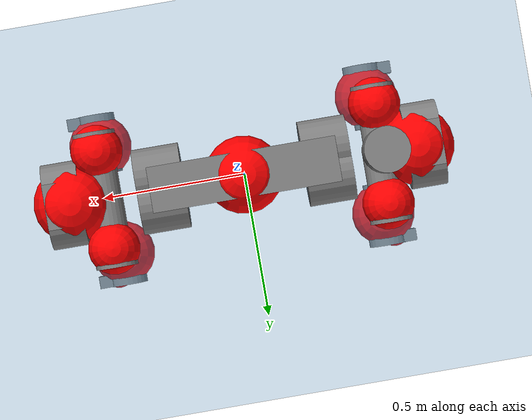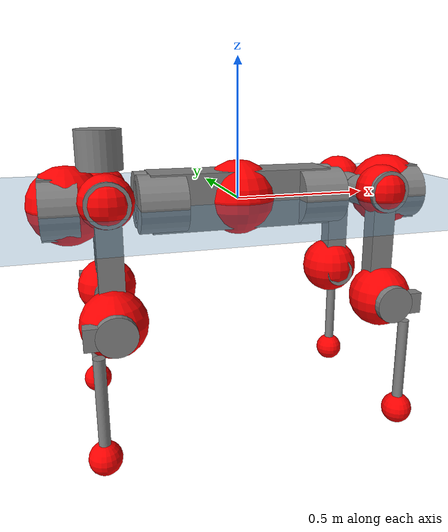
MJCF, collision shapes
<mujoco model="anymal_c">
  <compiler angle="radian" assetdir="assets" balanceinertia="true" inertiafromgeom="false"/>

  <option timestep="0.005" density="1.2" viscosity="2e-05"/>

  <size nkey="1"/>

  <visual>
    <quality shadowsize="8192"/>
    <map shadowclip="0.5"/>
  </visual>

  <default>
    <default class="/">
      <material specular="0" shininess="0.25"/>
      <geom contype="0" conaffinity="0" group="1" solref="-1000 -80"/>
      <site size="0.01 0.005 0.005" group="5"/>
      <general forcelimited="true" forcerange="-80 80" biastype="affine" gainprm="80" biasprm="0 -80 -2"/>
      <default class="anymal_c">
        <joint armature="0.01" damping="0.01" frictionloss="0.1"/>
        <default class="visual">
          <geom type="mesh" group="2"/>
          <default class="visual_zflip"/>
        </default>
        <default class="collision">
          <geom type="cylinder" group="3"/>
          <default class="foot">
            <geom size="0.03 0 0" type="sphere" condim="6" priority="1" friction="0.8 0.02 0.01" solimp="0.015 1 0.03"/>
          </default>
        </default>
      </default>
      <default class="reward_collision_sphere">
        <geom group="5" rgba="1 0 0 1"/>
      </default>
    </default>
  </default>

  <asset>
    <texture type="skybox" colorspace="auto" name="//unnamed_texture_0" builtin="gradient" rgb1="0.95 0.95 0.95" rgb2="0.95 0.95 0.95" width="100" height="600"/>
    <texture type="2d" colorspace="auto" name="texplane" builtin="checker" rgb1="0.345 0.575 0.748" rgb2="0.345 0.575 0.748" markrgb="1 1 1" width="512" height="512"/>
    <texture type="2d" colorspace="linear" name="base" file="base.png"/>
    <texture type="2d" colorspace="linear" name="top_shell" file="top_shell.png"/>
    <texture type="2d" colorspace="linear" name="bottom_shell" file="bottom_shell.png"/>
    <texture type="2d" colorspace="linear" name="remote" file="remote.png"/>
    <texture type="2d" colorspace="linear" name="hatch" file="hatch.png"/>
    <texture type="2d" colorspace="linear" name="handle" file="handle.png"/>
    <texture type="2d" colorspace="linear" name="face" file="face.png"/>
    <texture type="2d" colorspace="linear" name="battery" file="battery.png"/>
    <texture type="2d" colorspace="linear" name="lidar_cage" file="lidar_cage.png"/>
    <texture type="2d" colorspace="linear" name="depth_camera" file="depth_camera.png"/>
    <texture type="2d" colorspace="linear" name="wide_angle_camera" file="wide_angle_camera.png"/>
    <texture type="2d" colorspace="linear" name="lidar" file="lidar.png"/>
    <texture type="2d" colorspace="linear" name="drive" file="drive.png"/>
    <texture type="2d" colorspace="linear" name="hip_l" file="hip_l.png"/>
    <texture type="2d" colorspace="linear" name="shank_l" file="shank_l.png"/>
    <texture type="2d" colorspace="linear" name="foot" file="foot.png"/>
    <texture type="2d" colorspace="linear" name="thigh" file="thigh.png"/>
    <texture type="2d" colorspace="linear" name="shank_r" file="shank_r.png"/>
    <texture type="2d" colorspace="linear" name="hip_r" file="hip_r.png"/>
    <material name="MatPlane" class="/" texture="texplane" texuniform="true" texrepeat="2 2" specular="0.9" shininess="0.5"/>
    <material name="black_plastic" class="/" rgba="0.007 0.007 0.007 1"/>
    <material name="green" class="/" rgba="0.052 0.178 0.033 1"/>
    <material name="red" class="/" rgba="0.178 0.006 0.005 1"/>
    <material name="yellow" class="/" rgba="0.178 0.119 0.006 1"/>
    <material name="lwl" class="/" rgba="0.8 0.8 0.8 1"/>
    <material name="base" class="/" texture="base"/>
    <material name="top_shell" class="/" texture="top_shell"/>
    <material name="bottom_shell" class="/" texture="bottom_shell"/>
    <material name="hip_l" class="/" texture="hip_l"/>
    <material name="thigh" class="/" texture="thigh"/>
    <material name="shank_l" class="/" texture="shank_l"/>
    <material name="foot" class="/" texture="foot"/>
    <material name="hip_r" class="/" texture="hip_r"/>
    <material name="shank" class="/" texture="shank_r"/>
    <material name="hatch" class="/" texture="hatch"/>
    <material name="remote" class="/" texture="remote"/>
    <material name="handle" class="/" texture="handle"/>
    <material name="face" class="/" texture="face"/>
    <material name="depth_camera" class="/" texture="depth_camera"/>
    <material name="wide_angle_camera" class="/" texture="wide_angle_camera"/>
    <material name="battery" class="/" texture="battery"/>
    <material name="lidar_cage" class="/" texture="lidar_cage"/>
    <material name="lidar" class="/" texture="lidar"/>
    <material name="drive" class="/" texture="drive"/>
    <mesh name="base_0" class="/" file="base_0.obj"/>
    <mesh name="base_1" class="/" file="base_1.obj"/>
    <mesh name="base_2" class="/" file="base_2.obj"/>
    <mesh name="base_3" class="/" file="base_3.obj"/>
    <mesh name="base_4" class="/" file="base_4.obj"/>
    <mesh name="base_5" class="/" file="base_5.obj"/>
    <mesh name="top_shell" class="/" file="top_shell.obj"/>
    <mesh name="bottom_shell" class="/" file="bottom_shell.obj"/>
    <mesh name="remote" class="/" file="remote.obj"/>
    <mesh name="handle" class="/" file="handle.obj"/>
    <mesh name="face" class="/" file="face.obj"/>
    <mesh name="wide_angle_camera" class="/" file="wide_angle_camera.obj"/>
    <mesh name="depth_camera" class="/" file="depth_camera.obj"/>
    <mesh name="battery" class="/" file="battery.obj"/>
    <mesh name="lidar_cage" class="/" file="lidar_cage.obj"/>
    <mesh name="lidar" class="/" file="lidar.obj"/>
    <mesh name="drive" class="/" file="drive.obj"/>
    <mesh name="hip_l" class="/" file="hip_l.obj"/>
    <mesh name="thigh" class="/" file="thigh.obj"/>
    <mesh name="shank_l" class="/" file="shank_l.obj"/>
    <mesh name="foot" class="/" file="foot.obj"/>
    <mesh name="hip_r" class="/" file="hip_r.obj"/>
    <mesh name="hatch" class="/" file="hatch.obj"/>
    <mesh name="shank_r" class="/" file="shank_r.obj"/>
  </asset>

  <worldbody>
    <geom name="floor" class="/" size="100 100 0.125" type="plane" group="0" material="MatPlane"/>
    <light name="toplight_shadow" class="/" pos="0 0 5" dir="0.0990148 0.0990148 -0.990148" type="directional" ambient="0.04 0.04 0.04" diffuse="0.55 0.55 0.55" specular="0.12 0.12 0.12"/>
    <light name="toplight_fill" class="/" pos="0 0 5" dir="0.0990148 0.0990148 -0.990148" type="directional" castshadow="false" ambient="0.04 0.04 0.04" diffuse="0.3 0.3 0.3" specular="0.08 0.08 0.08"/>
    <body name="trunk" childclass="anymal_c" pos="0.00176493 -5.14504e-06 0.00524621" quat="1 0.000492396 -0.000145249 -0.000608214">
      <inertial pos="0.00968271 0.00792535 0.0680065" quat="0.502191 0.495878 0.498033 0.503858" mass="28.539" diaginertia="2.48064 0.0768429 1.02478"/>
      <joint name="//unnamed_joint_0" type="free" armature="0" damping="0" frictionloss="0"/>
      <geom name="//unnamed_geom_1" class="visual" material="green" mesh="base_0"/>
      <geom name="//unnamed_geom_2" class="visual" material="yellow" mesh="base_1"/>
      <geom name="//unnamed_geom_3" class="visual" material="red" mesh="base_2"/>
      <geom name="//unnamed_geom_4" class="visual" material="black_plastic" mesh="base_3"/>
      <geom name="//unnamed_geom_5" class="visual" material="lwl" mesh="base_4"/>
      <geom name="//unnamed_geom_6" class="visual" material="base" mesh="base_5"/>
      <geom name="trunk_1" class="collision" size="0.331683 0.0800614 0.102936" type="box"/>
      <geom name="trunk_2" class="collision" size="0.102936 0.0829207" pos="0.294196 0.0471327 0" quat="0.707107 0 0.707107 0"/>
      <geom name="trunk_3" class="collision" size="0.102936 0.0829207" pos="-0.294196 0.0471327 0" quat="0.707107 0 0.707107 0"/>
      <geom name="trunk_4" class="collision" size="0.102936 0.0829207" pos="0.294196 -0.0471327 0" quat="0.707107 0 0.707107 0"/>
      <geom name="trunk_5" class="collision" size="0.102936 0.0829207" pos="-0.294196 -0.0471327 0" quat="0.707107 0 0.707107 0"/>
      <geom name="//unnamed_geom_12" class="visual" material="top_shell" mesh="top_shell"/>
      <geom name="//unnamed_geom_13" class="visual" material="bottom_shell" mesh="bottom_shell"/>
      <geom name="//unnamed_geom_14" class="visual" material="remote" mesh="remote"/>
      <geom name="//unnamed_geom_15" class="visual" material="handle" mesh="handle"/>
      <geom name="//unnamed_geom_16" class="visual" pos="0.560663 0 0" quat="1 0 0 0" material="face" mesh="face"/>
      <geom name="trunk_6" class="collision" size="0.0629054 0.0800614 0.102936" pos="0.635057 0 0" type="box"/>
      <geom name="//unnamed_geom_18" class="collision" size="0.102936 0.0629054" pos="0.635057 0.0471327 0" quat="0.707107 0 0.707107 0"/>
      <geom name="//unnamed_geom_19" class="collision" size="0.102936 0.0629054" pos="0.635057 -0.0471327 0" quat="0.707107 0 0.707107 0"/>
      <geom name="//unnamed_geom_20" class="visual" pos="0.624441 0 -0.0414334" quat="0.965926 0 0.258819 0" material="depth_camera" mesh="depth_camera"/>
      <geom name="//unnamed_geom_21" class="visual" pos="0.693896 0 0.0210367" material="wide_angle_camera" mesh="wide_angle_camera"/>
      <geom name="//unnamed_geom_22" class="visual_zflip" pos="-0.560663 0 0" quat="0 0 0 1" material="face" mesh="face"/>
      <geom name="trunk_7" class="collision" size="0.0629054 0.0800614 0.102936" pos="-0.635057 0 0" quat="0 0 0 1" type="box"/>
      <geom name="//unnamed_geom_24" class="collision" size="0.102936 0.0629054" pos="-0.635057 -0.0471327 0" quat="0 -0.707107 0 0.707107"/>
      <geom name="//unnamed_geom_25" class="collision" size="0.102936 0.0629054" pos="-0.635057 0.0471327 0" quat="0 -0.707107 0 0.707107"/>
      <geom name="//unnamed_geom_26" class="visual" pos="-0.624441 0 -0.0414334" quat="0 -0.258819 0 0.965926" material="depth_camera" mesh="depth_camera"/>
      <geom name="//unnamed_geom_27" class="visual_zflip" pos="-0.693896 0 0.0210367" quat="0 0 0 1" material="wide_angle_camera" mesh="wide_angle_camera"/>
      <geom name="//unnamed_geom_28" class="visual" material="battery" mesh="battery"/>
      <geom name="//unnamed_geom_29" class="visual" pos="0 0.0425708 0.0404227" quat="0.683013 -0.183013 0.183013 0.683013" material="depth_camera" mesh="depth_camera"/>
      <geom name="//unnamed_geom_30" class="visual" pos="0 -0.0425708 0.0404227" quat="0.683013 0.183013 0.183013 -0.683013" material="depth_camera" mesh="depth_camera"/>
      <geom name="//unnamed_geom_31" class="visual" pos="-0.492355 0 0.103286" quat="1 0 0 0" material="lidar_cage" mesh="lidar_cage"/>
      <geom name="trunk_8" class="collision" size="0.0800614 0.0686241" pos="-0.492355 0 0.187602"/>
      <geom name="//unnamed_geom_33" class="visual" pos="-0.492355 -0.000266878 0.199827" quat="0.707107 0 0 -0.707107" material="lidar" mesh="lidar"/>
      <geom name="//unnamed_geom_34" class="visual" pos="0.405652 0.0702858 -1.26259e-08" quat="0.258819 0.965926 0 0" material="drive" mesh="drive"/>
      <geom name="//unnamed_geom_35" class="visual" pos="0.405652 -0.0702858 1.26259e-08" quat="0.258819 -0.965926 0 0" material="drive" mesh="drive"/>
      <geom name="//unnamed_geom_36" class="visual" pos="-0.405652 0.0702858 1.26259e-08" quat="0 0 0.965926 -0.258819" material="drive" mesh="drive"/>
      <geom name="//unnamed_geom_37" class="visual" pos="-0.405652 -0.0702858 -1.26259e-08" quat="0 0 -0.965926 -0.258819" material="drive" mesh="drive"/>
      <geom name="//unnamed_geom_38" class="visual" pos="0.156904 0 0.102584" quat="1 0 0 0" material="hatch" mesh="hatch"/>
      <geom name="//unnamed_geom_39" class="reward_collision_sphere" size="0.137248"/>
      <geom name="//unnamed_geom_40" class="reward_collision_sphere" size="0.137248" pos="0.608681 0 0"/>
      <geom name="//unnamed_geom_41" class="reward_collision_sphere" size="0.137248" pos="-0.608681 0 0"/>
      <site name="imu" pos="0.386515 -0.00098946 0.0258007" size="0.0114373"/>
      <camera name="track" pos="0 -1.34665 0" quat="0.707107 0.707107 0 0" mode="trackcom"/>
      <camera name="ego_camera" pos="0.608681 0 -0.0562102" quat="-0.5 -0.5 0.5 0.5"/>
      <body name="LF_HIP" pos="0.407271 0.071416 -0.00147791" quat="0.259686 0.965692 0.000792682 -0.000854971">
        <inertial pos="0.0685719 -0.00734333 -0.0137938" quat="-0.111551 0.708522 -0.125343 0.68545" mass="4.48179" diaginertia="0.0286953 0.000652045 0.017385"/>
        <joint name="LF_HAA" pos="0 0 0" axis="0.999566 0.00850775 0.0282099" range="-0.758435 0.416801" armature="0.00623595" damping="0.0518608" frictionloss="0.109461"/>
        <geom name="//unnamed_geom_42" class="visual" pos="0 -0.000742723 0.000121992" quat="0.258819 -0.965926 0 0" material="hip_l" mesh="hip_l"/>
        <geom name="//unnamed_geom_43" class="visual" pos="0.0810222 -0.0894916 -0.0570818" quat="0.183013 -0.683013 0.683013 0.183013" material="drive" mesh="drive"/>
        <geom name="//unnamed_geom_44" class="collision" size="0.0571867 0.0800614" pos="0.0810222 -0.00805283 -0.00970328" quat="-0.353553 -0.612372 0.612372 -0.353553"/>
        <body name="LF_THIGH" pos="0.0823201 -0.0504651 -0.0579289" quat="0.182187 -0.683791 0.682504 0.182828">
          <inertial pos="0.0397078 -0.000758585 -0.353635" quat="0.993313 -0.00596344 -0.0794076 0.083597" mass="4.44991" diaginertia="0.154806 0.00424864 0.0231854"/>
          <joint name="LF_HFE" pos="0 0 0" axis="0.998774 0.0378258 -0.0319372" range="-3.14327 3.15751" armature="0.0119693" damping="0.0104354" frictionloss="0.159255"/>
          <geom name="//unnamed_geom_45" class="visual" pos="0.0135154 2.12971e-05 0" quat="0.707107 0 0 -0.707107" material="thigh" mesh="thigh"/>
          <geom name="//unnamed_geom_46" class="collision" size="0.0743427 0.0457494" pos="0.0541049 0 0" quat="0.5 0.5 -0.5 -0.5"/>
          <geom name="//unnamed_geom_47" class="collision" size="0.04289 0.034312 0.161626" pos="0.0405787 0 -0.198582" quat="0.707107 0 0 -0.707107" type="box"/>
          <geom name="//unnamed_geom_48" class="visual" pos="0.135668 0 -0.400498" quat="1 0 0 0" material="drive" mesh="drive"/>
          <geom name="//unnamed_geom_49" class="collision" size="0.0571867 0.0800614" pos="0.0409845 0 -0.400498" quat="0.707107 0 0.707107 0"/>
          <geom name="//unnamed_geom_50" class="reward_collision_sphere" size="0.0914987" pos="0.0338156 0 0"/>
          <body name="LF_SHANK" pos="0.128815 0.00712128 -0.390541" quat="0.999994 6.3976e-05 0.00147971 0.00301492">
            <inertial pos="0.00728013 -0.0408245 -0.113301" quat="0.992914 -0.116128 -0.00125264 -0.0251839" mass="0.896638" diaginertia="0.0478032 0.00128799 0.00636559"/>
            <joint name="LF_KFE" pos="0 0 0" axis="0.999979 -0.00640552 0.000463247" stiffness="0.00297252" range="-3.04388 3.10527" armature="0.00986286" damping="0.0417204" frictionloss="0.0888333"/>
            <geom name="//unnamed_geom_51" class="visual" pos="0.00440707 0.0234987 0" quat="0.707107 0 0 -0.707107" material="shank_l" mesh="shank_l"/>
            <geom name="LF_kfe_act" class="collision" size="0.0686241 0.0228747" pos="0.0270525 0 0" quat="0.5 0.5 -0.5 -0.5"/>
            <geom name="//unnamed_geom_53" class="collision" size="0.0657636 0.038601 0.021731" pos="0.0270525 -0.0387155 0" quat="0.5 0.5 -0.5 -0.5" type="box"/>
            <geom name="//unnamed_geom_54" class="visual" pos="0.0176507 -0.0516462 -0.474934" quat="0.382683 0 0 -0.92388" material="foot" mesh="foot"/>
            <geom name="LF_calf" class="collision" size="0.0200154 0.161555" pos="0.0176517 -0.0592189 -0.237467" quat="0.707107 0 0 -0.707107"/>
            <geom name="LF_foot" class="foot" size="0.0330579" pos="0.0176517 -0.0592189 -0.443316" quat="0.707107 0 0 -0.707107"/>
            <geom name="//unnamed_geom_57" class="reward_collision_sphere" size="0.114373" pos="-0.0676312 0 0"/>
            <geom name="//unnamed_geom_58" class="reward_collision_sphere" size="0.0571867" pos="0.0176517 -0.0592189 -0.443316"/>
            <site name="LF_foot" class="foot" pos="0.0176517 -0.0592189 -0.443316" quat="0.707107 0 0 -0.707107" size="0.0114373"/>
          </body>
        </body>
      </body>
      <body name="RF_HIP" pos="0.410403 -0.0708682 0.0014885" quat="0.258833 -0.965922 -0.000588769 0.000245257">
        <inertial pos="0.0690885 0.00875807 -0.00986607" quat="0.136291 0.684276 0.126839 0.705056" mass="3.9321" diaginertia="0.0258013 0.000613758 0.0169522"/>
        <joint name="RF_HAA" pos="0 0 0" axis="0.999976 -0.00466338 0.00506426" stiffness="0.00197882" range="-0.324597 0.739193" armature="0.0156062" damping="0.0064695" frictionloss="0.159977"/>
        <geom name="//unnamed_geom_59" class="visual" pos="0 0.000742717 0.000121991" quat="0.258819 0.965926 0 0" material="hip_r" mesh="hip_r"/>
        <geom name="//unnamed_geom_60" class="visual" pos="0.0810221 0.0894916 -0.0570818" quat="0.183013 0.683013 0.683013 -0.183013" material="drive" mesh="drive"/>
        <geom name="//unnamed_geom_61" class="collision" size="0.0571867 0.0800614" pos="0.0810222 0.00805283 -0.00970328" quat="-0.353553 0.612372 0.612372 0.353553"/>
        <body name="RF_THIGH" pos="0.0833937 0.0402208 -0.0561454" quat="0.183028 0.68303 0.682983 -0.183045">
          <inertial pos="0.0409924 0.0013109 -0.347289" quat="0.992136 -0.0358978 -0.0634318 0.101751" mass="5.49903" diaginertia="0.150691 0.00420372 0.0238914"/>
          <joint name="RF_HFE" pos="0 0 0" axis="0.999536 -0.0188666 0.0239003" stiffness="0.00817485" range="-3.33677 3.04345" armature="0.0114587" damping="0.0365207" frictionloss="0.0514598"/>
          <geom name="//unnamed_geom_62" class="visual" pos="0.0135154 2.12971e-05 0" quat="0.707107 0 0 -0.707107" material="thigh" mesh="thigh"/>
          <geom name="//unnamed_geom_63" class="collision" size="0.0743427 0.0457494" pos="0.0541049 0 0" quat="0.5 0.5 0.5 0.5"/>
          <geom name="//unnamed_geom_64" class="collision" size="0.04289 0.034312 0.161626" pos="0.0405787 0 -0.198582" quat="0.707107 0 0 0.707107" type="box"/>
          <geom name="//unnamed_geom_65" class="visual" pos="0.135668 0 -0.400498" quat="1 0 0 0" material="drive" mesh="drive"/>
          <geom name="//unnamed_geom_66" class="collision" size="0.0571867 0.0800614" pos="0.0409845 0 -0.400498" quat="0.707107 0 0.707107 0"/>
          <geom name="//unnamed_geom_67" class="reward_collision_sphere" size="0.0914987" pos="0.0338156 0 0"/>
          <body name="RF_SHANK" pos="0.127951 0.00880059 -0.402156" quat="1 -0.000327833 -0.000909453 -0.000174864">
            <inertial pos="0.0065935 0.0393913 -0.122005" quat="0.993779 0.111096 -0.00368605 0.00693257" mass="0.870582" diaginertia="0.0517922 0.00138973 0.00630355"/>
            <joint name="RF_KFE" pos="0 0 0" axis="0.999991 0.00395335 -0.00175576" stiffness="0.00290758" range="-3.05928 3.0487" armature="0.0119033" damping="0.0164165" frictionloss="0.168008"/>
            <geom name="//unnamed_geom_68" class="visual" pos="0.00440705 -0.0234987 0" quat="0.707107 0 0 0.707107" material="shank" mesh="shank_r"/>
            <geom name="RF_kfe_act" class="collision" size="0.0686241 0.0228747" pos="0.0270525 0 0" quat="0.5 0.5 0.5 0.5"/>
            <geom name="//unnamed_geom_70" class="collision" size="0.0657636 0.038601 0.021731" pos="0.0270525 0.0387155 0" quat="0.5 0.5 0.5 0.5" type="box"/>
            <geom name="//unnamed_geom_71" class="visual" pos="0.0176528 0.0516462 -0.474934" quat="0.382683 0 0 0.92388" material="foot" mesh="foot"/>
            <geom name="RF_calf" class="collision" size="0.0200154 0.161555" pos="0.0176517 0.0592189 -0.237467" quat="0.707107 0 0 0.707107"/>
            <geom name="RF_foot" class="foot" size="0.0483555" pos="0.0176517 0.0592189 -0.443316" quat="0.707107 0 0 0.707107"/>
            <geom name="//unnamed_geom_74" class="reward_collision_sphere" size="0.114373" pos="-0.0676312 0 0"/>
            <geom name="//unnamed_geom_75" class="reward_collision_sphere" size="0.0571867" pos="0.0176517 0.0592189 -0.443316"/>
            <site name="RF_foot" class="foot" pos="0.0176517 0.0592189 -0.443316" quat="0.707107 0 0 0.707107" size="0.0114373"/>
          </body>
        </body>
      </body>
      <body name="LH_HIP" pos="-0.395897 0.0680616 0.00039867" quat="4.86138e-05 0.000104005 0.965925 -0.258821">
        <inertial pos="0.0743364 0.00194126 -0.00967928" quat="0.146516 0.669876 0.11543 0.718662" mass="4.20414" diaginertia="0.0293799 0.000654881 0.0216123"/>
        <joint name="LH_HAA" pos="0 0 0" axis="0.999982 0.00160244 -0.00577752" stiffness="0.00397079" range="-0.521772 0.940254" armature="0.0164862" damping="0.0245544" frictionloss="0.103592"/>
        <geom name="//unnamed_geom_76" class="visual" pos="0 0.000742717 0.000121991" quat="-0.258819 -0.965926 0 0" material="hip_r" mesh="hip_r"/>
        <geom name="//unnamed_geom_77" class="visual" pos="0.0810221 0.0894916 -0.0570818" quat="0.183013 0.683013 0.683013 -0.183013" material="drive" mesh="drive"/>
        <geom name="//unnamed_geom_78" class="collision" size="0.0571867 0.0800614" pos="0.0810222 0.00805283 -0.00970328" quat="-0.353553 0.612372 0.612372 0.353553"/>
        <body name="LH_THIGH" pos="0.0855383 0.0596298 -0.0591808" quat="0.182959 0.682974 0.683037 -0.183122">
          <inertial pos="0.0414224 -0.00674846 -0.346282" quat="0.993217 0.00331984 -0.0779879 0.0861771" mass="4.60612" diaginertia="0.137475 0.00433985 0.0226877"/>
          <joint name="LH_HFE" pos="0 0 0" axis="0.999389 -0.0307436 -0.01661" range="-3.13028 3.10458" armature="0.0131835" damping="0.020137" frictionloss="0.10725"/>
          <geom name="//unnamed_geom_79" class="visual" pos="0.0135154 2.12971e-05 0" quat="0.707107 0 0 -0.707107" material="thigh" mesh="thigh"/>
          <geom name="//unnamed_geom_80" class="collision" size="0.0743427 0.0457494" pos="0.0541049 0 0" quat="0.5 0.5 -0.5 -0.5"/>
          <geom name="//unnamed_geom_81" class="collision" size="0.04289 0.034312 0.161626" pos="0.0405787 0 -0.198582" quat="0.707107 0 0 -0.707107" type="box"/>
          <geom name="//unnamed_geom_82" class="visual" pos="0.135668 0 -0.400498" quat="1 0 0 0" material="drive" mesh="drive"/>
          <geom name="//unnamed_geom_83" class="collision" size="0.0571867 0.0800614" pos="0.0409845 0 -0.400498" quat="0.707107 0 0.707107 0"/>
          <geom name="//unnamed_geom_84" class="reward_collision_sphere" size="0.0914987" pos="0.0338156 0 0"/>
          <body name="LH_SHANK" pos="0.140524 0.00116477 -0.399019" quat="1 0.000316447 0.000828013 -0.000120845">
            <inertial pos="0.00762833 0.04188 -0.114214" quat="0.990137 0.115501 -0.01405 0.0780459" mass="0.894294" diaginertia="0.0476201 0.0013168 0.00698341"/>
            <joint name="LH_KFE" pos="0 0 0" axis="0.999552 -0.0112354 0.0277562" stiffness="0.00456316" range="-3.18052 3.12952" armature="0.0146724" damping="0.00174022" frictionloss="0.0872533"/>
            <geom name="//unnamed_geom_85" class="visual" pos="0.00440705 -0.0234987 0" quat="-0.707107 0 0 -0.707107" material="shank" mesh="shank_r"/>
            <geom name="LH_kfe_act" class="collision" size="0.0686241 0.0228747" pos="0.0270525 0 0" quat="0.5 0.5 -0.5 -0.5"/>
            <geom name="//unnamed_geom_87" class="collision" size="0.0657636 0.038601 0.021731" pos="0.0270525 0.0387155 0" quat="0.5 0.5 -0.5 -0.5" type="box"/>
            <geom name="//unnamed_geom_88" class="visual" pos="0.0176528 0.0516462 -0.474934" quat="-0.382683 0 0 -0.92388" material="foot" mesh="foot"/>
            <geom name="LH_calf" class="collision" size="0.0200154 0.161555" pos="0.0176517 0.0592189 -0.237467" quat="0.707107 0 0 -0.707107"/>
            <geom name="LH_foot" class="foot" size="0.0179008" pos="0.0176517 0.0592189 -0.443316" quat="0.707107 0 0 -0.707107"/>
            <geom name="//unnamed_geom_91" class="reward_collision_sphere" size="0.114373" pos="-0.0676312 0 0"/>
            <geom name="//unnamed_geom_92" class="reward_collision_sphere" size="0.0571867" pos="0.0176517 0.0592189 -0.443316"/>
            <site name="LH_foot" class="foot" pos="0.0176517 0.0592189 -0.443316" quat="0.707107 0 0 -0.707107" size="0.0114373"/>
          </body>
        </body>
      </body>
      <body name="RH_HIP" pos="-0.404564 -0.0615242 0.00234907" quat="0.000182932 -0.0027688 -0.96558 -0.26009">
        <inertial pos="0.0852514 -0.011894 -0.0191632" quat="-0.12748 0.710476 -0.134315 0.67892" mass="4.28655" diaginertia="0.0278437 0.000710532 0.0209096"/>
        <joint name="RH_HAA" pos="0 0 0" axis="0.999998 -0.00169312 -0.00120947" stiffness="0.0129055" range="-0.577571 0.295549" armature="0.0116223" damping="0.0323308" frictionloss="0.117866"/>
        <geom name="//unnamed_geom_93" class="visual" pos="0 -0.000742723 0.000121992" quat="-0.258819 0.965926 0 0" material="hip_l" mesh="hip_l"/>
        <geom name="//unnamed_geom_94" class="visual" pos="0.0810222 -0.0894916 -0.0570818" quat="-0.183013 0.683013 -0.683013 -0.183013" material="drive" mesh="drive"/>
        <geom name="//unnamed_geom_95" class="collision" size="0.0571867 0.0800614" pos="0.0810222 -0.00805283 -0.00970328" quat="0.353553 0.612372 -0.612372 0.353553"/>
        <body name="RH_THIGH" pos="0.0833352 -0.0459194 -0.0674066" quat="-0.18314 0.683128 -0.682899 -0.182879">
          <inertial pos="0.0362508 -0.000448387 -0.344418" quat="0.993325 -0.00358302 -0.0809217 0.0821198" mass="5.82107" diaginertia="0.169315 0.00479212 0.0260894"/>
          <joint name="RH_HFE" pos="0 0 0" axis="0.999434 -0.00564518 -0.0331491" stiffness="0.00732027" range="-3.10519 3.16919" armature="0.0124719" damping="0.00975628" frictionloss="0.118828"/>
          <geom name="//unnamed_geom_96" class="visual" pos="0.0135154 2.12971e-05 0" quat="0.707107 0 0 -0.707107" material="thigh" mesh="thigh"/>
          <geom name="//unnamed_geom_97" class="collision" size="0.0743427 0.0457494" pos="0.0541049 0 0" quat="0.5 0.5 0.5 0.5"/>
          <geom name="//unnamed_geom_98" class="collision" size="0.04289 0.034312 0.161626" pos="0.0405787 0 -0.198582" quat="0.707107 0 0 0.707107" type="box"/>
          <geom name="//unnamed_geom_99" class="visual" pos="0.135668 0 -0.400498" quat="1 0 0 0" material="drive" mesh="drive"/>
          <geom name="//unnamed_geom_100" class="collision" size="0.0571867 0.0800614" pos="0.0409845 0 -0.400498" quat="0.707107 0 0.707107 0"/>
          <geom name="//unnamed_geom_101" class="reward_collision_sphere" size="0.0914987" pos="0.0338156 0 0"/>
          <body name="RH_SHANK" pos="0.143811 -0.000496604 -0.399572" quat="0.999999 -0.000289478 0.00147008 -0.000197263">
            <inertial pos="0.00917558 -0.0416383 -0.111448" quat="0.989485 -0.137957 -0.0281381 -0.0331088" mass="0.917653" diaginertia="0.0492237 0.00119412 0.0064218"/>
            <joint name="RH_KFE" pos="0 0 0" axis="0.9995 -0.0313903 0.00366544" range="-3.14269 3.15469" armature="0.0168656" damping="0.00750387" frictionloss="0.112219"/>
            <geom name="//unnamed_geom_102" class="visual" pos="0.00440707 0.0234987 0" quat="0.707107 0 0 -0.707107" material="shank_l" mesh="shank_l"/>
            <geom name="RH_kfe_act" class="collision" size="0.0686241 0.0228747" pos="0.0270525 0 0" quat="0.5 0.5 0.5 0.5"/>
            <geom name="//unnamed_geom_104" class="collision" size="0.0657636 0.038601 0.021731" pos="0.0270525 -0.0387155 0" quat="0.5 0.5 0.5 0.5" type="box"/>
            <geom name="//unnamed_geom_105" class="visual" pos="0.0176507 -0.0516462 -0.474934" quat="0.382683 0 0 -0.92388" material="foot" mesh="foot"/>
            <geom name="RH_calf" class="collision" size="0.0200154 0.161555" pos="0.0176517 -0.0592189 -0.237467" quat="0.707107 0 0 0.707107"/>
            <geom name="RH_foot" class="foot" size="0.0403749" pos="0.0176517 -0.0592189 -0.443316" quat="0.707107 0 0 0.707107"/>
            <geom name="//unnamed_geom_108" class="reward_collision_sphere" size="0.114373" pos="-0.0676312 0 0"/>
            <geom name="//unnamed_geom_109" class="reward_collision_sphere" size="0.0571867" pos="0.0176517 -0.0592189 -0.443316"/>
            <site name="RH_foot" class="foot" pos="0.0176517 -0.0592189 -0.443316" quat="0.707107 0 0 0.707107" size="0.0114373"/>
          </body>
        </body>
      </body>
    </body>
  </worldbody>

  <contact>
    <pair class="/" geom1="floor" geom2="LF_foot" name="//unnamed_contact_0"/>
    <pair class="/" geom1="floor" geom2="RF_foot" name="//unnamed_contact_1"/>
    <pair class="/" geom1="floor" geom2="LH_foot" name="//unnamed_contact_2"/>
    <pair class="/" geom1="floor" geom2="RH_foot" name="//unnamed_contact_3"/>
  </contact>

  <actuator>
    <general name="LF_HAA" class="/" joint="LF_HAA" forcerange="-88.3784 88.3784" gainprm="61.474" biasprm="0 -61.474 -2.40623"/>
    <general name="LF_HFE" class="/" joint="LF_HFE" forcerange="-104.408 104.408" gainprm="61.474" biasprm="0 -61.474 -2.40623"/>
    <general name="LF_KFE" class="/" joint="LF_KFE" forcerange="-94.6706 94.6706" gainprm="61.474" biasprm="0 -61.474 -2.40623"/>
    <general name="RF_HAA" class="/" joint="RF_HAA" forcerange="-106.351 106.351" gainprm="61.474" biasprm="0 -61.474 -2.40623"/>
    <general name="RF_HFE" class="/" joint="RF_HFE" forcerange="-83.363 83.363" gainprm="61.474" biasprm="0 -61.474 -2.40623"/>
    <general name="RF_KFE" class="/" joint="RF_KFE" forcerange="-117.828 117.828" gainprm="61.474" biasprm="0 -61.474 -2.40623"/>
    <general name="LH_HAA" class="/" joint="LH_HAA" forcerange="-93.4986 93.4986" gainprm="61.474" biasprm="0 -61.474 -2.40623"/>
    <general name="LH_HFE" class="/" joint="LH_HFE" forcerange="-118.622 118.622" gainprm="61.474" biasprm="0 -61.474 -2.40623"/>
    <general name="LH_KFE" class="/" joint="LH_KFE" forcerange="-93.8438 93.8438" gainprm="61.474" biasprm="0 -61.474 -2.40623"/>
    <general name="RH_HAA" class="/" joint="RH_HAA" forcerange="-94.8066 94.8066" gainprm="61.474" biasprm="0 -61.474 -2.40623"/>
    <general name="RH_HFE" class="/" joint="RH_HFE" forcerange="-123.343 123.343" gainprm="61.474" biasprm="0 -61.474 -2.40623"/>
    <general name="RH_KFE" class="/" joint="RH_KFE" forcerange="-67.4316 67.4316" gainprm="61.474" biasprm="0 -61.474 -2.40623"/>
  </actuator>

  <sensor>
    <gyro site="imu" name="imu_angular_velocity"/>
    <velocimeter site="imu" name="imu_linear_velocity"/>
    <framelinvel objtype="site" objname="LF_foot" name="LF_foot_global_linear_velocity"/>
    <framelinvel objtype="site" objname="RF_foot" name="RF_foot_global_linear_velocity"/>
    <framelinvel objtype="site" objname="LH_foot" name="LH_foot_global_linear_velocity"/>
    <framelinvel objtype="site" objname="RH_foot" name="RH_foot_global_linear_velocity"/>
  </sensor>

  <keyframe>
    <key name="home" qpos="0 0 0.55 1 0 0 0 0 0.4 -0.8 0 -0.4 0.8 0 -0.4 0.8 0 0.4 -0.8"/>
  </keyframe>
</mujoco>
